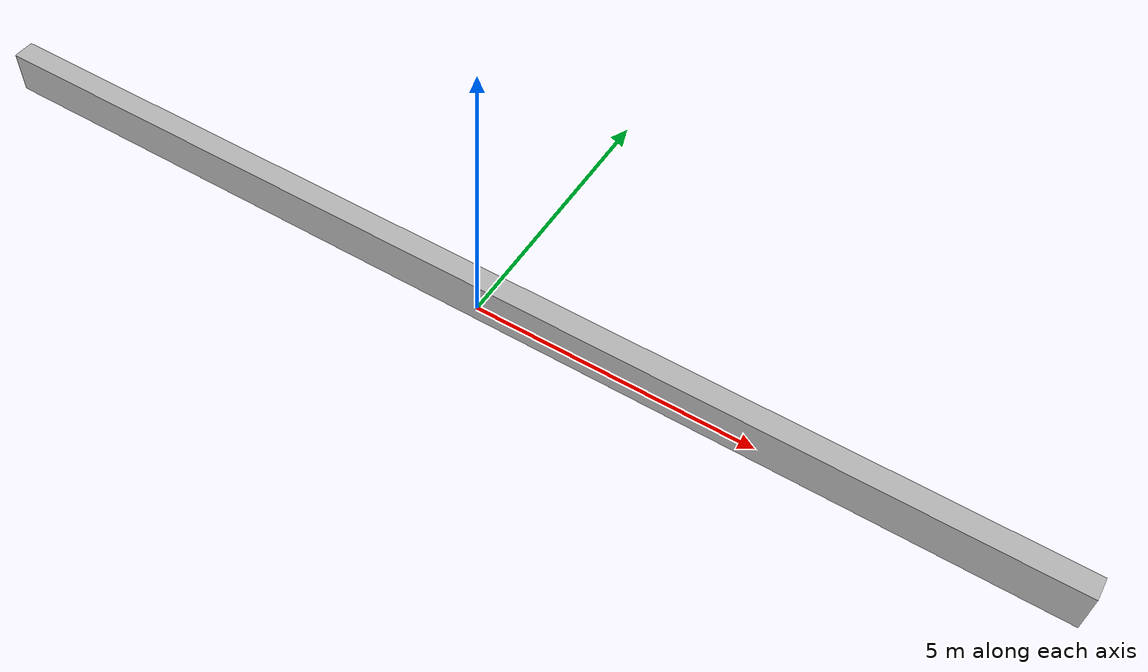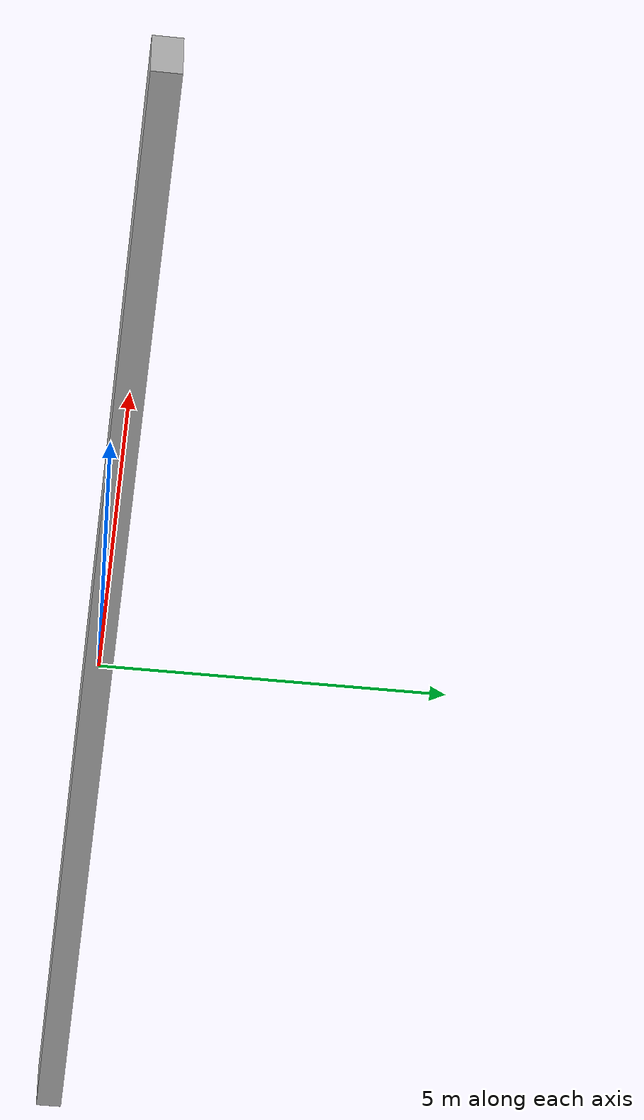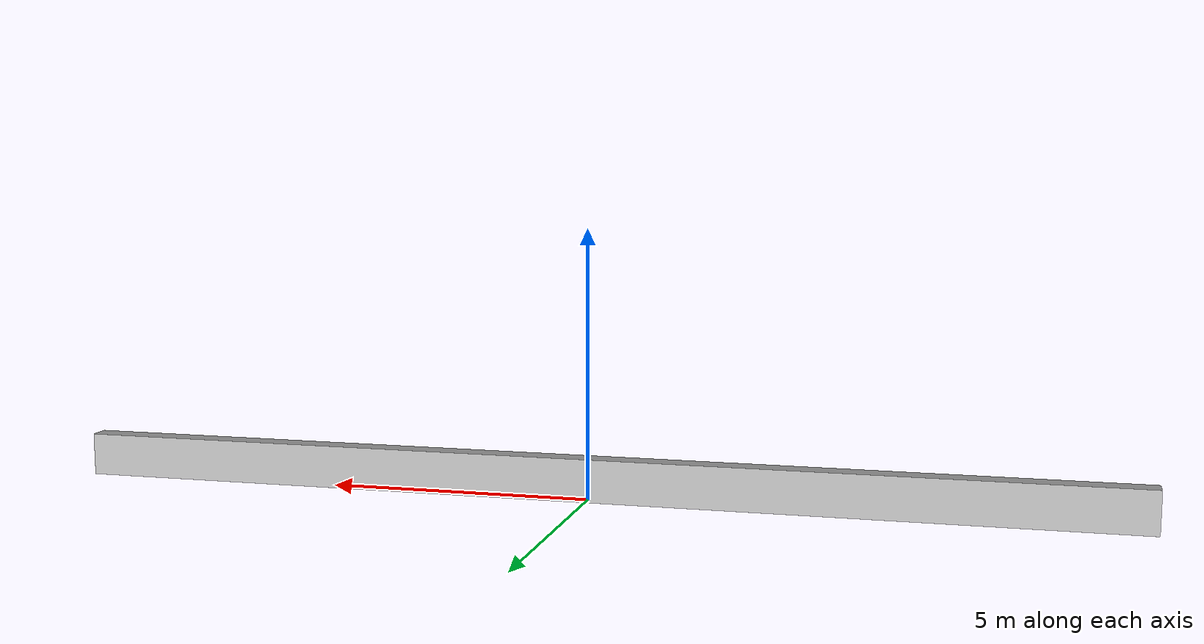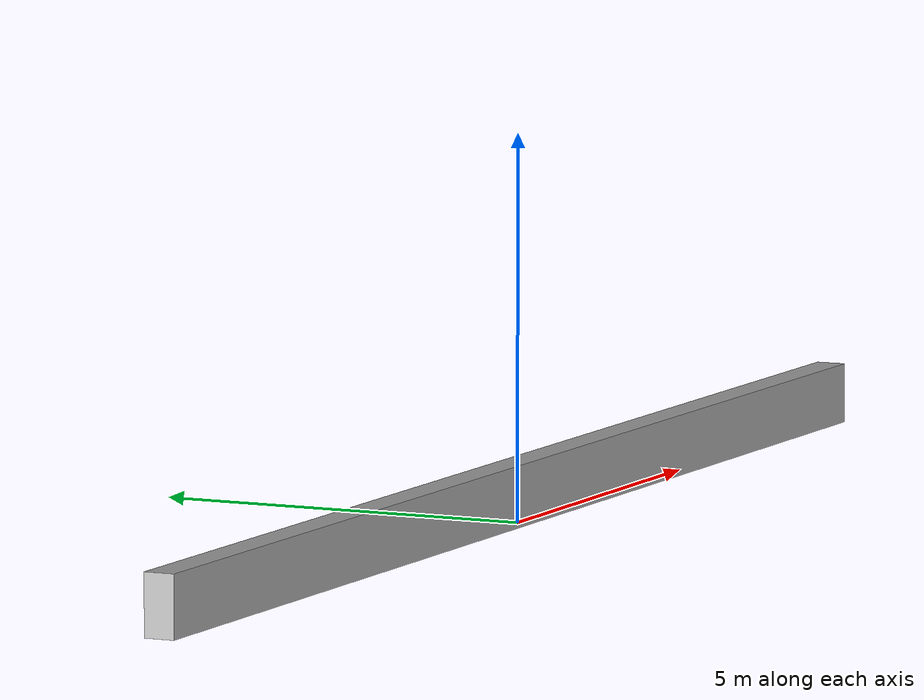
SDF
<?xml version="1.0" ?>
<sdf version="1.3">
  <model name="cotton">
    <static>true</static>
    <link name="link">
      <pose>0 0 0.4 0 0 0</pose>
      <collision name="collision">
        <geometry>
          <box>
            <size>20 0.4 0.8</size>
          </box>
        </geometry>
      </collision>
      <visual name="visual">
        <cast_shadows>false</cast_shadows>
        <geometry>
          <box>
            <size>20 0.4 0.8</size>
          </box>
        </geometry>
        <material>
          <script>
            <uri>model://cotton/materials/scripts</uri>
            <uri>model://cotton/materials/textures</uri>
            <name>vrc/cotton</name>
          </script>
        </material>
      </visual>
    </link>
  </model>
</sdf>
